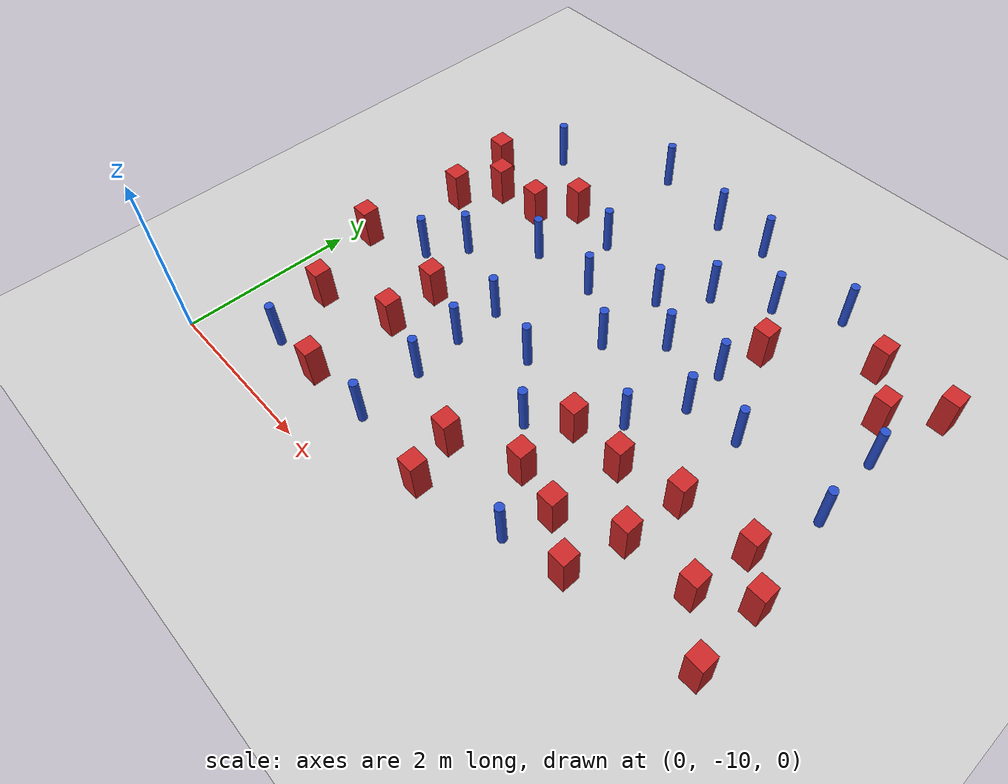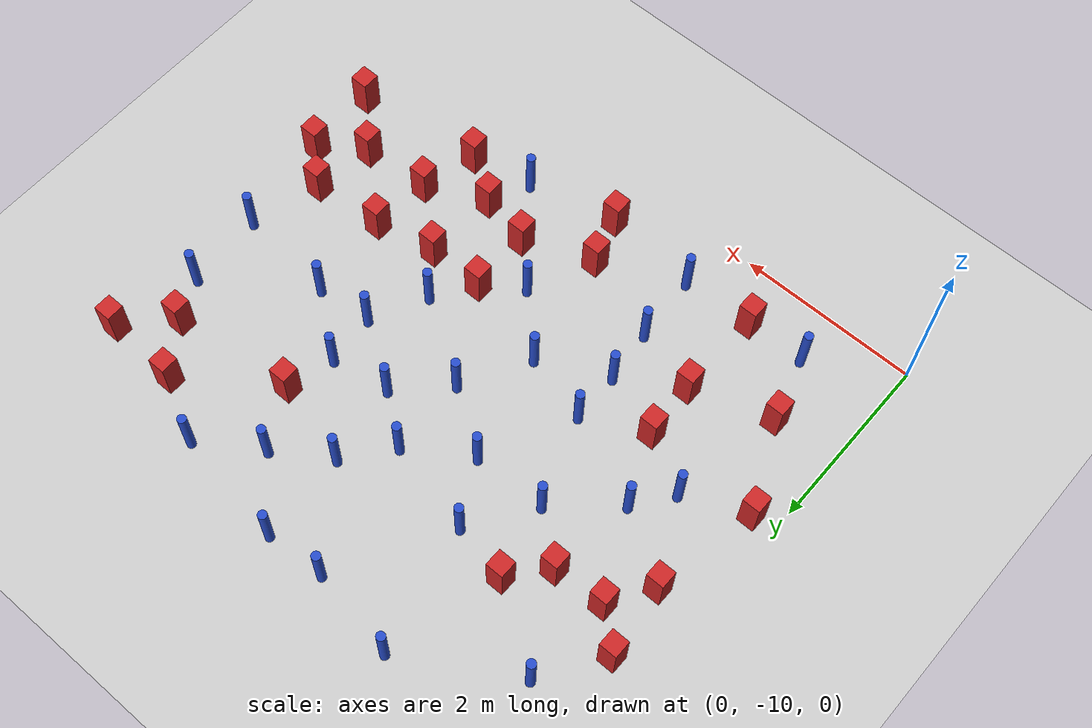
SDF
<sdf version="1.6">
 <world name="default">
  <model name="ground_plane">
   <static>1</static>
   <link name="link">
    <collision name="collision">
     <geometry><plane><normal>0 0 1</normal><size>100 100</size></plane></geometry>
     <surface><friction><ode><mu>100</mu><mu2>50</mu2></ode></friction></surface>
    </collision>
    <visual name="visual">
     <cast_shadows>0</cast_shadows>
     <geometry><plane><normal>0 0 1</normal><size>100 100</size></plane></geometry>
     <material>
      <ambient>1.0 1.0 1.0 1.0</ambient>
      <diffuse>0.8 0.8 0.8 1.0</diffuse>
      <specular>0.01 0.01 0.01 1.000000</specular>
     </material>
    </visual>
   </link>
  </model>
  <model name="pole_obstacle1">
   <static>true</static>
   <pose>3.65739315824 -4.48320199937 2.88873142074e-08 -9.90536689859e-09 4.60219948989e-07 -1.20965994961e-07</pose>
   <link name="link">
    <pose>0 0 0.3 0 -0 0</pose>
    <inertial>
     <mass>1</mass>
     <inertia><ixx>0.145833</ixx><ixy>0</ixy><ixz>0</ixz><iyy>0.145833</iyy><iyz>0</iyz><izz>0.125</izz></inertia>
    </inertial>
    <collision name="collision">
     <geometry><cylinder><radius>0.05</radius><length>.6</length></cylinder></geometry>
    </collision>
    <visual name="visual">
     <geometry><cylinder><radius>0.05</radius><length>.6</length></cylinder></geometry>
     <material>
      <script><name>Gazebo/Blue</name><uri>file://media/materials/scripts/gazebo.material</uri></script>
     </material>
    </visual>
   </link>
  </model>
  <model name="pole_obstacle7">
   <static>true</static>
   <pose>1.22205446212 -6.99600765452 2.88873142074e-08 -9.90536689852e-09 4.60219948989e-07 -1.2096599496e-07</pose>
   <link name="link">
    <pose>0 0 0.3 0 -0 0</pose>
    <inertial>
     <mass>1</mass>
     <inertia><ixx>0.145833</ixx><ixy>0</ixy><ixz>0</ixz><iyy>0.145833</iyy><iyz>0</iyz><izz>0.125</izz></inertia>
    </inertial>
    <collision name="collision">
     <geometry><cylinder><radius>0.05</radius><length>.6</length></cylinder></geometry>
    </collision>
    <visual name="visual">
     <geometry><cylinder><radius>0.05</radius><length>.6</length></cylinder></geometry>
     <material>
      <script><name>Gazebo/Blue</name><uri>file://media/materials/scripts/gazebo.material</uri></script>
     </material>
    </visual>
   </link>
  </model>
  <model name="pole_obstacle18">
   <static>true</static>
   <pose>2.01173463298 -4.35096842097 2.88873142074e-08 -9.90536689932e-09 4.60219948987e-07 -1.20965994962e-07</pose>
   <link name="link">
    <pose>0 0 0.3 0 -0 0</pose>
    <inertial>
     <mass>1</mass>
     <inertia><ixx>0.145833</ixx><ixy>0</ixy><ixz>0</ixz><iyy>0.145833</iyy><iyz>0</iyz><izz>0.125</izz></inertia>
    </inertial>
    <collision name="collision">
     <geometry><cylinder><radius>0.05</radius><length>.6</length></cylinder></geometry>
    </collision>
    <visual name="visual">
     <geometry><cylinder><radius>0.05</radius><length>.6</length></cylinder></geometry>
     <material>
      <script><name>Gazebo/Blue</name><uri>file://media/materials/scripts/gazebo.material</uri></script>
     </material>
    </visual>
   </link>
  </model>
  <model name="square_post_obstacle15">
   <static>true</static>
   <pose>3.21988299101 -8.89908096435 8.22691968438e-08 7.22125133819e-06 -7.54495500217e-07 2.29674213826e-05</pose>
   <link name="link">
    <pose>0 0 0.25 0 -0 0</pose>
    <inertial>
     <mass>100</mass>
     <inertia>
      <ixx>0.166667</ixx>
      <ixy>0</ixy>
      <ixz>0</ixz>
      <iyy>0.166667</iyy>
      <iyz>0</iyz>
      <izz>0.166667</izz>
     </inertia>
    </inertial>
    <collision name="collision"><geometry><box><size>.2 .2 .5</size></box></geometry></collision>
    <visual name="visual">
     <geometry><box><size>.2 .2 .5</size></box></geometry>
     <material>
      <script><name>Gazebo/Red</name><uri>file://media/materials/scripts/gazebo.material</uri></script>
     </material>
    </visual>
   </link>
  </model>
  <model name="square_post_obstacle23">
   <static>true</static>
   <pose>6.04751558992 -7.67596608932 8.22691968438e-08 7.22125133819e-06 -7.54495500217e-07 2.29674213826e-05</pose>
   <link name="link">
    <pose>0 0 0.25 0 -0 0</pose>
    <inertial>
     <mass>100</mass>
     <inertia>
      <ixx>0.166667</ixx>
      <ixy>0</ixy>
      <ixz>0</ixz>
      <iyy>0.166667</iyy>
      <iyz>0</iyz>
      <izz>0.166667</izz>
     </inertia>
    </inertial>
    <collision name="collision"><geometry><box><size>.2 .2 .5</size></box></geometry></collision>
    <visual name="visual">
     <geometry><box><size>.2 .2 .5</size></box></geometry>
     <material>
      <script><name>Gazebo/Red</name><uri>file://media/materials/scripts/gazebo.material</uri></script>
     </material>
    </visual>
   </link>
  </model>
  <model name="square_post_obstacle29">
   <static>true</static>
   <pose>5.25063450716 -7.74062578746 8.22691968438e-08 7.2212513382e-06 -7.54495500217e-07 2.29674213826e-05</pose>
   <link name="link">
    <pose>0 0 0.25 0 -0 0</pose>
    <inertial>
     <mass>100</mass>
     <inertia>
      <ixx>0.166667</ixx>
      <ixy>0</ixy>
      <ixz>0</ixz>
      <iyy>0.166667</iyy>
      <iyz>0</iyz>
      <izz>0.166667</izz>
     </inertia>
    </inertial>
    <collision name="collision"><geometry><box><size>.2 .2 .5</size></box></geometry></collision>
    <visual name="visual">
     <geometry><box><size>.2 .2 .5</size></box></geometry>
     <material>
      <script><name>Gazebo/Red</name><uri>file://media/materials/scripts/gazebo.material</uri></script>
     </material>
    </visual>
   </link>
  </model>
  <model name="pole_obstacle43">
   <static>true</static>
   <pose>4.94702246728 -4.67626609164 2.88873142074e-08 -9.90536690842e-09 4.60219948965e-07 -1.20965994976e-07</pose>
   <link name="link">
    <pose>0 0 0.3 0 -0 0</pose>
    <inertial>
     <mass>1</mass>
     <inertia><ixx>0.145833</ixx><ixy>0</ixy><ixz>0</ixz><iyy>0.145833</iyy><iyz>0</iyz><izz>0.125</izz></inertia>
    </inertial>
    <collision name="collision">
     <geometry><cylinder><radius>0.05</radius><length>.6</length></cylinder></geometry>
    </collision>
    <visual name="visual">
     <geometry><cylinder><radius>0.05</radius><length>.6</length></cylinder></geometry>
     <material>
      <script><name>Gazebo/Blue</name><uri>file://media/materials/scripts/gazebo.material</uri></script>
     </material>
    </visual>
   </link>
  </model>
  <model name="pole_obstacle45">
   <static>true</static>
   <pose>3.35569557505 -6.87437294628 2.88873142074e-08 -9.90536689859e-09 4.60219948989e-07 -1.20965994961e-07</pose>
   <link name="link">
    <pose>0 0 0.3 0 -0 0</pose>
    <inertial>
     <mass>1</mass>
     <inertia><ixx>0.145833</ixx><ixy>0</ixy><ixz>0</ixz><iyy>0.145833</iyy><iyz>0</iyz><izz>0.125</izz></inertia>
    </inertial>
    <collision name="collision">
     <geometry><cylinder><radius>0.05</radius><length>.6</length></cylinder></geometry>
    </collision>
    <visual name="visual">
     <geometry><cylinder><radius>0.05</radius><length>.6</length></cylinder></geometry>
     <material>
      <script><name>Gazebo/Blue</name><uri>file://media/materials/scripts/gazebo.material</uri></script>
     </material>
    </visual>
   </link>
  </model>
  <model name="pole_obstacle55">
   <static>true</static>
   <pose>2.66759036344 -6.4156882368 2.88873142074e-08 -9.90536689859e-09 4.60219948989e-07 -1.20965994961e-07</pose>
   <link name="link">
    <pose>0 0 0.3 0 -0 0</pose>
    <inertial>
     <mass>1</mass>
     <inertia><ixx>0.145833</ixx><ixy>0</ixy><ixz>0</ixz><iyy>0.145833</iyy><iyz>0</iyz><izz>0.125</izz></inertia>
    </inertial>
    <collision name="collision">
     <geometry><cylinder><radius>0.05</radius><length>.6</length></cylinder></geometry>
    </collision>
    <visual name="visual">
     <geometry><cylinder><radius>0.05</radius><length>.6</length></cylinder></geometry>
     <material>
      <script><name>Gazebo/Blue</name><uri>file://media/materials/scripts/gazebo.material</uri></script>
     </material>
    </visual>
   </link>
  </model>
  <model name="square_post_obstacle52">
   <static>true</static>
   <pose>4.62579269263 -5.7338035239 8.22691968438e-08 7.2212513382e-06 -7.54495500217e-07 2.29674213826e-05</pose>
   <link name="link">
    <pose>0 0 0.25 0 -0 0</pose>
    <inertial>
     <mass>100</mass>
     <inertia>
      <ixx>0.166667</ixx>
      <ixy>0</ixy>
      <ixz>0</ixz>
      <iyy>0.166667</iyy>
      <iyz>0</iyz>
      <izz>0.166667</izz>
     </inertia>
    </inertial>
    <collision name="collision"><geometry><box><size>.2 .2 .5</size></box></geometry></collision>
    <visual name="visual">
     <geometry><box><size>.2 .2 .5</size></box></geometry>
     <material>
      <script><name>Gazebo/Red</name><uri>file://media/materials/scripts/gazebo.material</uri></script>
     </material>
    </visual>
   </link>
  </model>
  <model name="square_post_obstacle57">
   <static>true</static>
   <pose>0.698648312188 -8.67454856008 8.22691968438e-08 7.22125133819e-06 -7.54495500217e-07 2.29674213826e-05</pose>
   <link name="link">
    <pose>0 0 0.25 0 -0 0</pose>
    <inertial>
     <mass>100</mass>
     <inertia>
      <ixx>0.166667</ixx>
      <ixy>0</ixy>
      <ixz>0</ixz>
      <iyy>0.166667</iyy>
      <iyz>0</iyz>
      <izz>0.166667</izz>
     </inertia>
    </inertial>
    <collision name="collision"><geometry><box><size>.2 .2 .5</size></box></geometry></collision>
    <visual name="visual">
     <geometry><box><size>.2 .2 .5</size></box></geometry>
     <material>
      <script><name>Gazebo/Red</name><uri>file://media/materials/scripts/gazebo.material</uri></script>
     </material>
    </visual>
   </link>
  </model>
  <model name="pole_obstacle71">
   <static>true</static>
   <pose>2.96030339051 -7.61163965273 2.88873142074e-08 -9.90536689859e-09 4.60219948989e-07 -1.20965994961e-07</pose>
   <link name="link">
    <pose>0 0 0.3 0 -0 0</pose>
    <inertial>
     <mass>1</mass>
     <inertia><ixx>0.145833</ixx><ixy>0</ixy><ixz>0</ixz><iyy>0.145833</iyy><iyz>0</iyz><izz>0.125</izz></inertia>
    </inertial>
    <collision name="collision">
     <geometry><cylinder><radius>0.05</radius><length>.6</length></cylinder></geometry>
    </collision>
    <visual name="visual">
     <geometry><cylinder><radius>0.05</radius><length>.6</length></cylinder></geometry>
     <material>
      <script><name>Gazebo/Blue</name><uri>file://media/materials/scripts/gazebo.material</uri></script>
     </material>
    </visual>
   </link>
  </model>
  <model name="pole_obstacle72">
   <static>true</static>
   <pose>3.71090245789 -5.48729451987 2.88873142074e-08 -9.90536689859e-09 4.60219948989e-07 -1.20965994961e-07</pose>
   <link name="link">
    <pose>0 0 0.3 0 -0 0</pose>
    <inertial>
     <mass>1</mass>
     <inertia><ixx>0.145833</ixx><ixy>0</ixy><ixz>0</ixz><iyy>0.145833</iyy><iyz>0</iyz><izz>0.125</izz></inertia>
    </inertial>
    <collision name="collision">
     <geometry><cylinder><radius>0.05</radius><length>.6</length></cylinder></geometry>
    </collision>
    <visual name="visual">
     <geometry><cylinder><radius>0.05</radius><length>.6</length></cylinder></geometry>
     <material>
      <script><name>Gazebo/Blue</name><uri>file://media/materials/scripts/gazebo.material</uri></script>
     </material>
    </visual>
   </link>
  </model>
  <model name="pole_obstacle73">
   <static>true</static>
   <pose>5.16660916505 -6.77714790191 2.88873142074e-08 -9.90536690842e-09 4.60219948965e-07 -1.20965994976e-07</pose>
   <link name="link">
    <pose>0 0 0.3 0 -0 0</pose>
    <inertial>
     <mass>1</mass>
     <inertia><ixx>0.145833</ixx><ixy>0</ixy><ixz>0</ixz><iyy>0.145833</iyy><iyz>0</iyz><izz>0.125</izz></inertia>
    </inertial>
    <collision name="collision">
     <geometry><cylinder><radius>0.05</radius><length>.6</length></cylinder></geometry>
    </collision>
    <visual name="visual">
     <geometry><cylinder><radius>0.05</radius><length>.6</length></cylinder></geometry>
     <material>
      <script><name>Gazebo/Blue</name><uri>file://media/materials/scripts/gazebo.material</uri></script>
     </material>
    </visual>
   </link>
  </model>
  <model name="pole_obstacle79">
   <static>true</static>
   <pose>2.29023742442 -8.5745845594 2.88873142074e-08 -9.90536692318e-09 4.6021994893e-07 -1.20965994988e-07</pose>
   <link name="link">
    <pose>0 0 0.3 0 -0 0</pose>
    <inertial>
     <mass>1</mass>
     <inertia><ixx>0.145833</ixx><ixy>0</ixy><ixz>0</ixz><iyy>0.145833</iyy><iyz>0</iyz><izz>0.125</izz></inertia>
    </inertial>
    <collision name="collision">
     <geometry><cylinder><radius>0.05</radius><length>.6</length></cylinder></geometry>
    </collision>
    <visual name="visual">
     <geometry><cylinder><radius>0.05</radius><length>.6</length></cylinder></geometry>
     <material>
      <script><name>Gazebo/Blue</name><uri>file://media/materials/scripts/gazebo.material</uri></script>
     </material>
    </visual>
   </link>
  </model>
  <model name="square_post_obstacle71">
   <static>true</static>
   <pose>5.6048974799 -5.02530628249 8.22691968438e-08 7.22125133819e-06 -7.54495500217e-07 2.29674213826e-05</pose>
   <link name="link">
    <pose>0 0 0.25 0 -0 0</pose>
    <inertial>
     <mass>100</mass>
     <inertia>
      <ixx>0.166667</ixx>
      <ixy>0</ixy>
      <ixz>0</ixz>
      <iyy>0.166667</iyy>
      <iyz>0</iyz>
      <izz>0.166667</izz>
     </inertia>
    </inertial>
    <collision name="collision"><geometry><box><size>.2 .2 .5</size></box></geometry></collision>
    <visual name="visual">
     <geometry><box><size>.2 .2 .5</size></box></geometry>
     <material>
      <script><name>Gazebo/Red</name><uri>file://media/materials/scripts/gazebo.material</uri></script>
     </material>
    </visual>
   </link>
  </model>
  <model name="square_post_obstacle72">
   <static>true</static>
   <pose>5.03410437836 -9.03712477254 8.22691968438e-08 7.22125133819e-06 -7.54495500217e-07 2.29674213826e-05</pose>
   <link name="link">
    <pose>0 0 0.25 0 -0 0</pose>
    <inertial>
     <mass>100</mass>
     <inertia>
      <ixx>0.166667</ixx>
      <ixy>0</ixy>
      <ixz>0</ixz>
      <iyy>0.166667</iyy>
      <iyz>0</iyz>
      <izz>0.166667</izz>
     </inertia>
    </inertial>
    <collision name="collision"><geometry><box><size>.2 .2 .5</size></box></geometry></collision>
    <visual name="visual">
     <geometry><box><size>.2 .2 .5</size></box></geometry>
     <material>
      <script><name>Gazebo/Red</name><uri>file://media/materials/scripts/gazebo.material</uri></script>
     </material>
    </visual>
   </link>
  </model>
  <model name="square_post_obstacle78">
   <static>true</static>
   <pose>3.94985074465 -7.87588354614 8.22691968438e-08 7.2212513382e-06 -7.54495500217e-07 2.29674213826e-05</pose>
   <link name="link">
    <pose>0 0 0.25 0 -0 0</pose>
    <inertial>
     <mass>100</mass>
     <inertia>
      <ixx>0.166667</ixx>
      <ixy>0</ixy>
      <ixz>0</ixz>
      <iyy>0.166667</iyy>
      <iyz>0</iyz>
      <izz>0.166667</izz>
     </inertia>
    </inertial>
    <collision name="collision"><geometry><box><size>.2 .2 .5</size></box></geometry></collision>
    <visual name="visual">
     <geometry><box><size>.2 .2 .5</size></box></geometry>
     <material>
      <script><name>Gazebo/Red</name><uri>file://media/materials/scripts/gazebo.material</uri></script>
     </material>
    </visual>
   </link>
  </model>
  <model name="pole_obstacle91">
   <static>true</static>
   <pose>2.22232558398 -7.97722410862 2.88873142074e-08 -9.90536692129e-09 4.60219948935e-07 -1.20965994985e-07</pose>
   <link name="link">
    <pose>0 0 0.3 0 -0 0</pose>
    <inertial>
     <mass>1</mass>
     <inertia><ixx>0.145833</ixx><ixy>0</ixy><ixz>0</ixz><iyy>0.145833</iyy><iyz>0</iyz><izz>0.125</izz></inertia>
    </inertial>
    <collision name="collision">
     <geometry><cylinder><radius>0.05</radius><length>.6</length></cylinder></geometry>
    </collision>
    <visual name="visual">
     <geometry><cylinder><radius>0.05</radius><length>.6</length></cylinder></geometry>
     <material>
      <script><name>Gazebo/Blue</name><uri>file://media/materials/scripts/gazebo.material</uri></script>
     </material>
    </visual>
   </link>
  </model>
  <model name="square_post_obstacle88">
   <static>true</static>
   <pose>6.4522033444 -8.84956385897 8.22691968438e-08 7.2212513382e-06 -7.54495500217e-07 2.29674213826e-05</pose>
   <link name="link">
    <pose>0 0 0.25 0 -0 0</pose>
    <inertial>
     <mass>100</mass>
     <inertia>
      <ixx>0.166667</ixx>
      <ixy>0</ixy>
      <ixz>0</ixz>
      <iyy>0.166667</iyy>
      <iyz>0</iyz>
      <izz>0.166667</izz>
     </inertia>
    </inertial>
    <collision name="collision"><geometry><box><size>.2 .2 .5</size></box></geometry></collision>
    <visual name="visual">
     <geometry><box><size>.2 .2 .5</size></box></geometry>
     <material>
      <script><name>Gazebo/Red</name><uri>file://media/materials/scripts/gazebo.material</uri></script>
     </material>
    </visual>
   </link>
  </model>
  <model name="pole_obstacle96">
   <static>true</static>
   <pose>2.34333774229 -9.33823856717 2.88873142074e-08 -9.90536692318e-09 4.6021994893e-07 -1.20965994988e-07</pose>
   <link name="link">
    <pose>0 0 0.3 0 -0 0</pose>
    <inertial>
     <mass>1</mass>
     <inertia><ixx>0.145833</ixx><ixy>0</ixy><ixz>0</ixz><iyy>0.145833</iyy><iyz>0</iyz><izz>0.125</izz></inertia>
    </inertial>
    <collision name="collision">
     <geometry><cylinder><radius>0.05</radius><length>.6</length></cylinder></geometry>
    </collision>
    <visual name="visual">
     <geometry><cylinder><radius>0.05</radius><length>.6</length></cylinder></geometry>
     <material>
      <script><name>Gazebo/Blue</name><uri>file://media/materials/scripts/gazebo.material</uri></script>
     </material>
    </visual>
   </link>
  </model>
  <model name="square_post_obstacle96">
   <static>true</static>
   <pose>1.55835667237 -9.37310184265 8.22691968438e-08 7.22125133819e-06 -7.54495500217e-07 2.29674213826e-05</pose>
   <link name="link">
    <pose>0 0 0.25 0 -0 0</pose>
    <inertial>
     <mass>100</mass>
     <inertia>
      <ixx>0.166667</ixx>
      <ixy>0</ixy>
      <ixz>0</ixz>
      <iyy>0.166667</iyy>
      <iyz>0</iyz>
      <izz>0.166667</izz>
     </inertia>
    </inertial>
    <collision name="collision"><geometry><box><size>.2 .2 .5</size></box></geometry></collision>
    <visual name="visual">
     <geometry><box><size>.2 .2 .5</size></box></geometry>
     <material>
      <script><name>Gazebo/Red</name><uri>file://media/materials/scripts/gazebo.material</uri></script>
     </material>
    </visual>
   </link>
  </model>
  <model name="square_post_obstacle98">
   <static>true</static>
   <pose>1.67275912267 -5.62196269488 8.22691968438e-08 7.2212513382e-06 -7.54495500217e-07 2.29674213826e-05</pose>
   <link name="link">
    <pose>0 0 0.25 0 -0 0</pose>
    <inertial>
     <mass>100</mass>
     <inertia>
      <ixx>0.166667</ixx>
      <ixy>0</ixy>
      <ixz>0</ixz>
      <iyy>0.166667</iyy>
      <iyz>0</iyz>
      <izz>0.166667</izz>
     </inertia>
    </inertial>
    <collision name="collision"><geometry><box><size>.2 .2 .5</size></box></geometry></collision>
    <visual name="visual">
     <geometry><box><size>.2 .2 .5</size></box></geometry>
     <material>
      <script><name>Gazebo/Red</name><uri>file://media/materials/scripts/gazebo.material</uri></script>
     </material>
    </visual>
   </link>
  </model>
  <model name="pole_obstacle105">
   <static>true</static>
   <pose>1.85806245193 -6.4401720642 2.88873142074e-08 -9.90536689852e-09 4.60219948989e-07 -1.2096599496e-07</pose>
   <link name="link">
    <pose>0 0 0.3 0 -0 0</pose>
    <inertial>
     <mass>1</mass>
     <inertia><ixx>0.145833</ixx><ixy>0</ixy><ixz>0</ixz><iyy>0.145833</iyy><iyz>0</iyz><izz>0.125</izz></inertia>
    </inertial>
    <collision name="collision">
     <geometry><cylinder><radius>0.05</radius><length>.6</length></cylinder></geometry>
    </collision>
    <visual name="visual">
     <geometry><cylinder><radius>0.05</radius><length>.6</length></cylinder></geometry>
     <material>
      <script><name>Gazebo/Blue</name><uri>file://media/materials/scripts/gazebo.material</uri></script>
     </material>
    </visual>
   </link>
  </model>
  <model name="square_post_obstacle105">
   <static>true</static>
   <pose>4.57862427116 -7.87932431411 8.22691968438e-08 7.22125133819e-06 -7.54495500217e-07 2.29674213826e-05</pose>
   <link name="link">
    <pose>0 0 0.25 0 -0 0</pose>
    <inertial>
     <mass>100</mass>
     <inertia>
      <ixx>0.166667</ixx>
      <ixy>0</ixy>
      <ixz>0</ixz>
      <iyy>0.166667</iyy>
      <iyz>0</iyz>
      <izz>0.166667</izz>
     </inertia>
    </inertial>
    <collision name="collision"><geometry><box><size>.2 .2 .5</size></box></geometry></collision>
    <visual name="visual">
     <geometry><box><size>.2 .2 .5</size></box></geometry>
     <material>
      <script><name>Gazebo/Red</name><uri>file://media/materials/scripts/gazebo.material</uri></script>
     </material>
    </visual>
   </link>
  </model>
  <model name="square_post_obstacle107">
   <static>true</static>
   <pose>0.478189539805 -6.52604958438 8.22691968438e-08 7.2212513382e-06 -7.54495500217e-07 2.29674213826e-05</pose>
   <link name="link">
    <pose>0 0 0.25 0 -0 0</pose>
    <inertial>
     <mass>100</mass>
     <inertia>
      <ixx>0.166667</ixx>
      <ixy>0</ixy>
      <ixz>0</ixz>
      <iyy>0.166667</iyy>
      <iyz>0</iyz>
      <izz>0.166667</izz>
     </inertia>
    </inertial>
    <collision name="collision"><geometry><box><size>.2 .2 .5</size></box></geometry></collision>
    <visual name="visual">
     <geometry><box><size>.2 .2 .5</size></box></geometry>
     <material>
      <script><name>Gazebo/Red</name><uri>file://media/materials/scripts/gazebo.material</uri></script>
     </material>
    </visual>
   </link>
  </model>
  <model name="pole_obstacle114">
   <static>true</static>
   <pose>2.99220562541 -4.51915075554 2.88873142074e-08 -9.90536689859e-09 4.60219948989e-07 -1.20965994961e-07</pose>
   <link name="link">
    <pose>0 0 0.3 0 -0 0</pose>
    <inertial>
     <mass>1</mass>
     <inertia><ixx>0.145833</ixx><ixy>0</ixy><ixz>0</ixz><iyy>0.145833</iyy><iyz>0</iyz><izz>0.125</izz></inertia>
    </inertial>
    <collision name="collision">
     <geometry><cylinder><radius>0.05</radius><length>.6</length></cylinder></geometry>
    </collision>
    <visual name="visual">
     <geometry><cylinder><radius>0.05</radius><length>.6</length></cylinder></geometry>
     <material>
      <script><name>Gazebo/Blue</name><uri>file://media/materials/scripts/gazebo.material</uri></script>
     </material>
    </visual>
   </link>
  </model>
  <model name="pole_obstacle115">
   <static>true</static>
   <pose>0.811722050141 -5.05490556978 2.88873142074e-08 -9.90536689661e-09 4.60219948993e-07 -1.20965994957e-07</pose>
   <link name="link">
    <pose>0 0 0.3 0 -0 0</pose>
    <inertial>
     <mass>1</mass>
     <inertia><ixx>0.145833</ixx><ixy>0</ixy><ixz>0</ixz><iyy>0.145833</iyy><iyz>0</iyz><izz>0.125</izz></inertia>
    </inertial>
    <collision name="collision">
     <geometry><cylinder><radius>0.05</radius><length>.6</length></cylinder></geometry>
    </collision>
    <visual name="visual">
     <geometry><cylinder><radius>0.05</radius><length>.6</length></cylinder></geometry>
     <material>
      <script><name>Gazebo/Blue</name><uri>file://media/materials/scripts/gazebo.material</uri></script>
     </material>
    </visual>
   </link>
  </model>
  <model name="pole_obstacle119">
   <static>true</static>
   <pose>2.30880766306 -5.74942018082 2.88873142074e-08 -9.90536689859e-09 4.60219948989e-07 -1.20965994961e-07</pose>
   <link name="link">
    <pose>0 0 0.3 0 -0 0</pose>
    <inertial>
     <mass>1</mass>
     <inertia><ixx>0.145833</ixx><ixy>0</ixy><ixz>0</ixz><iyy>0.145833</iyy><iyz>0</iyz><izz>0.125</izz></inertia>
    </inertial>
    <collision name="collision">
     <geometry><cylinder><radius>0.05</radius><length>.6</length></cylinder></geometry>
    </collision>
    <visual name="visual">
     <geometry><cylinder><radius>0.05</radius><length>.6</length></cylinder></geometry>
     <material>
      <script><name>Gazebo/Blue</name><uri>file://media/materials/scripts/gazebo.material</uri></script>
     </material>
    </visual>
   </link>
  </model>
  <model name="pole_obstacle124">
   <static>true</static>
   <pose>4.49861119113 -6.26717394891 2.88873142074e-08 -9.90536690842e-09 4.60219948965e-07 -1.20965994976e-07</pose>
   <link name="link">
    <pose>0 0 0.3 0 -0 0</pose>
    <inertial>
     <mass>1</mass>
     <inertia><ixx>0.145833</ixx><ixy>0</ixy><ixz>0</ixz><iyy>0.145833</iyy><iyz>0</iyz><izz>0.125</izz></inertia>
    </inertial>
    <collision name="collision">
     <geometry><cylinder><radius>0.05</radius><length>.6</length></cylinder></geometry>
    </collision>
    <visual name="visual">
     <geometry><cylinder><radius>0.05</radius><length>.6</length></cylinder></geometry>
     <material>
      <script><name>Gazebo/Blue</name><uri>file://media/materials/scripts/gazebo.material</uri></script>
     </material>
    </visual>
   </link>
  </model>
  <model name="square_post_obstacle122">
   <static>true</static>
   <pose>5.1878017933 -8.40824305975 8.22691968438e-08 7.2212513382e-06 -7.54495500217e-07 2.29674213826e-05</pose>
   <link name="link">
    <pose>0 0 0.25 0 -0 0</pose>
    <inertial>
     <mass>100</mass>
     <inertia>
      <ixx>0.166667</ixx>
      <ixy>0</ixy>
      <ixz>0</ixz>
      <iyy>0.166667</iyy>
      <iyz>0</iyz>
      <izz>0.166667</izz>
     </inertia>
    </inertial>
    <collision name="collision"><geometry><box><size>.2 .2 .5</size></box></geometry></collision>
    <visual name="visual">
     <geometry><box><size>.2 .2 .5</size></box></geometry>
     <material>
      <script><name>Gazebo/Red</name><uri>file://media/materials/scripts/gazebo.material</uri></script>
     </material>
    </visual>
   </link>
  </model>
  <model name="pole_obstacle128">
   <static>true</static>
   <pose>4.36153956619 -9.18904836948 2.88873142074e-08 -9.9053668967e-09 4.60219948993e-07 -1.20965994957e-07</pose>
   <link name="link">
    <pose>0 0 0.3 0 -0 0</pose>
    <inertial>
     <mass>1</mass>
     <inertia><ixx>0.145833</ixx><ixy>0</ixy><ixz>0</ixz><iyy>0.145833</iyy><iyz>0</iyz><izz>0.125</izz></inertia>
    </inertial>
    <collision name="collision">
     <geometry><cylinder><radius>0.05</radius><length>.6</length></cylinder></geometry>
    </collision>
    <visual name="visual">
     <geometry><cylinder><radius>0.05</radius><length>.6</length></cylinder></geometry>
     <material>
      <script><name>Gazebo/Blue</name><uri>file://media/materials/scripts/gazebo.material</uri></script>
     </material>
    </visual>
   </link>
  </model>
  <model name="square_post_obstacle125">
   <static>true</static>
   <pose>5.99073592019 -5.56121431936 8.22691968438e-08 7.2212513382e-06 -7.54495500217e-07 2.29674213826e-05</pose>
   <link name="link">
    <pose>0 0 0.25 0 -0 0</pose>
    <inertial>
     <mass>100</mass>
     <inertia>
      <ixx>0.166667</ixx>
      <ixy>0</ixy>
      <ixz>0</ixz>
      <iyy>0.166667</iyy>
      <iyz>0</iyz>
      <izz>0.166667</izz>
     </inertia>
    </inertial>
    <collision name="collision"><geometry><box><size>.2 .2 .5</size></box></geometry></collision>
    <visual name="visual">
     <geometry><box><size>.2 .2 .5</size></box></geometry>
     <material>
      <script><name>Gazebo/Red</name><uri>file://media/materials/scripts/gazebo.material</uri></script>
     </material>
    </visual>
   </link>
  </model>
  <model name="pole_obstacle130">
   <static>true</static>
   <pose>2.20804863374 -7.41557176191 2.88873142074e-08 -9.90536689859e-09 4.60219948989e-07 -1.20965994961e-07</pose>
   <link name="link">
    <pose>0 0 0.3 0 -0 0</pose>
    <inertial>
     <mass>1</mass>
     <inertia><ixx>0.145833</ixx><ixy>0</ixy><ixz>0</ixz><iyy>0.145833</iyy><iyz>0</iyz><izz>0.125</izz></inertia>
    </inertial>
    <collision name="collision">
     <geometry><cylinder><radius>0.05</radius><length>.6</length></cylinder></geometry>
    </collision>
    <visual name="visual">
     <geometry><cylinder><radius>0.05</radius><length>.6</length></cylinder></geometry>
     <material>
      <script><name>Gazebo/Blue</name><uri>file://media/materials/scripts/gazebo.material</uri></script>
     </material>
    </visual>
   </link>
  </model>
  <model name="square_post_obstacle132">
   <static>true</static>
   <pose>1.53577865869 -7.74850424013 8.22691968438e-08 7.2212513382e-06 -7.54495500217e-07 2.29674213826e-05</pose>
   <link name="link">
    <pose>0 0 0.25 0 -0 0</pose>
    <inertial>
     <mass>100</mass>
     <inertia>
      <ixx>0.166667</ixx>
      <ixy>0</ixy>
      <ixz>0</ixz>
      <iyy>0.166667</iyy>
      <iyz>0</iyz>
      <izz>0.166667</izz>
     </inertia>
    </inertial>
    <collision name="collision"><geometry><box><size>.2 .2 .5</size></box></geometry></collision>
    <visual name="visual">
     <geometry><box><size>.2 .2 .5</size></box></geometry>
     <material>
      <script><name>Gazebo/Red</name><uri>file://media/materials/scripts/gazebo.material</uri></script>
     </material>
    </visual>
   </link>
  </model>
  <model name="pole_obstacle151">
   <static>true</static>
   <pose>3.85108368015 -6.37427262864 2.88873142074e-08 -9.90536689859e-09 4.60219948989e-07 -1.20965994961e-07</pose>
   <link name="link">
    <pose>0 0 0.3 0 -0 0</pose>
    <inertial>
     <mass>1</mass>
     <inertia><ixx>0.145833</ixx><ixy>0</ixy><ixz>0</ixz><iyy>0.145833</iyy><iyz>0</iyz><izz>0.125</izz></inertia>
    </inertial>
    <collision name="collision">
     <geometry><cylinder><radius>0.05</radius><length>.6</length></cylinder></geometry>
    </collision>
    <visual name="visual">
     <geometry><cylinder><radius>0.05</radius><length>.6</length></cylinder></geometry>
     <material>
      <script><name>Gazebo/Blue</name><uri>file://media/materials/scripts/gazebo.material</uri></script>
     </material>
    </visual>
   </link>
  </model>
  <model name="pole_obstacle152">
   <static>true</static>
   <pose>4.29188586102 -5.10471423867 2.88873142074e-08 -9.90536690842e-09 4.60219948965e-07 -1.20965994976e-07</pose>
   <link name="link">
    <pose>0 0 0.3 0 -0 0</pose>
    <inertial>
     <mass>1</mass>
     <inertia><ixx>0.145833</ixx><ixy>0</ixy><ixz>0</ixz><iyy>0.145833</iyy><iyz>0</iyz><izz>0.125</izz></inertia>
    </inertial>
    <collision name="collision">
     <geometry><cylinder><radius>0.05</radius><length>.6</length></cylinder></geometry>
    </collision>
    <visual name="visual">
     <geometry><cylinder><radius>0.05</radius><length>.6</length></cylinder></geometry>
     <material>
      <script><name>Gazebo/Blue</name><uri>file://media/materials/scripts/gazebo.material</uri></script>
     </material>
    </visual>
   </link>
  </model>
  <model name="square_post_obstacle156">
   <static>true</static>
   <pose>0.256281540472 -7.7123943354 8.22691968438e-08 7.2212513382e-06 -7.54495500217e-07 2.29674213826e-05</pose>
   <link name="link">
    <pose>0 0 0.25 0 -0 0</pose>
    <inertial>
     <mass>100</mass>
     <inertia>
      <ixx>0.166667</ixx>
      <ixy>0</ixy>
      <ixz>0</ixz>
      <iyy>0.166667</iyy>
      <iyz>0</iyz>
      <izz>0.166667</izz>
     </inertia>
    </inertial>
    <collision name="collision"><geometry><box><size>.2 .2 .5</size></box></geometry></collision>
    <visual name="visual">
     <geometry><box><size>.2 .2 .5</size></box></geometry>
     <material>
      <script><name>Gazebo/Red</name><uri>file://media/materials/scripts/gazebo.material</uri></script>
     </material>
    </visual>
   </link>
  </model>
  <model name="pole_obstacle175">
   <static>true</static>
   <pose>6.27930871416 -6.89168919093 2.88873142074e-08 -9.90536690842e-09 4.60219948965e-07 -1.20965994976e-07</pose>
   <link name="link">
    <pose>0 0 0.3 0 -0 0</pose>
    <inertial>
     <mass>1</mass>
     <inertia><ixx>0.145833</ixx><ixy>0</ixy><ixz>0</ixz><iyy>0.145833</iyy><iyz>0</iyz><izz>0.125</izz></inertia>
    </inertial>
    <collision name="collision">
     <geometry><cylinder><radius>0.05</radius><length>.6</length></cylinder></geometry>
    </collision>
    <visual name="visual">
     <geometry><cylinder><radius>0.05</radius><length>.6</length></cylinder></geometry>
     <material>
      <script><name>Gazebo/Blue</name><uri>file://media/materials/scripts/gazebo.material</uri></script>
     </material>
    </visual>
   </link>
  </model>
  <model name="square_post_obstacle177">
   <static>true</static>
   <pose>0.384573911324 -5.72338788444 8.22691968438e-08 7.22125133819e-06 -7.54495500217e-07 2.29674213826e-05</pose>
   <link name="link">
    <pose>0 0 0.25 0 -0 0</pose>
    <inertial>
     <mass>100</mass>
     <inertia>
      <ixx>0.166667</ixx>
      <ixy>0</ixy>
      <ixz>0</ixz>
      <iyy>0.166667</iyy>
      <iyz>0</iyz>
      <izz>0.166667</izz>
     </inertia>
    </inertial>
    <collision name="collision"><geometry><box><size>.2 .2 .5</size></box></geometry></collision>
    <visual name="visual">
     <geometry><box><size>.2 .2 .5</size></box></geometry>
     <material>
      <script><name>Gazebo/Red</name><uri>file://media/materials/scripts/gazebo.material</uri></script>
     </material>
    </visual>
   </link>
  </model>
  <model name="pole_obstacle185">
   <static>true</static>
   <pose>3.54777571527 -8.18921066967 2.88873142074e-08 -9.90536692318e-09 4.6021994893e-07 -1.20965994988e-07</pose>
   <link name="link">
    <pose>0 0 0.3 0 -0 0</pose>
    <inertial>
     <mass>1</mass>
     <inertia><ixx>0.145833</ixx><ixy>0</ixy><ixz>0</ixz><iyy>0.145833</iyy><iyz>0</iyz><izz>0.125</izz></inertia>
    </inertial>
    <collision name="collision">
     <geometry><cylinder><radius>0.05</radius><length>.6</length></cylinder></geometry>
    </collision>
    <visual name="visual">
     <geometry><cylinder><radius>0.05</radius><length>.6</length></cylinder></geometry>
     <material>
      <script><name>Gazebo/Blue</name><uri>file://media/materials/scripts/gazebo.material</uri></script>
     </material>
    </visual>
   </link>
  </model>
  <model name="square_post_obstacle184">
   <static>true</static>
   <pose>1.57367269202 -8.3723130609 8.22691968438e-08 7.22125133819e-06 -7.54495500217e-07 2.29674213826e-05</pose>
   <link name="link">
    <pose>0 0 0.25 0 -0 0</pose>
    <inertial>
     <mass>100</mass>
     <inertia>
      <ixx>0.166667</ixx>
      <ixy>0</ixy>
      <ixz>0</ixz>
      <iyy>0.166667</iyy>
      <iyz>0</iyz>
      <izz>0.166667</izz>
     </inertia>
    </inertial>
    <collision name="collision"><geometry><box><size>.2 .2 .5</size></box></geometry></collision>
    <visual name="visual">
     <geometry><box><size>.2 .2 .5</size></box></geometry>
     <material>
      <script><name>Gazebo/Red</name><uri>file://media/materials/scripts/gazebo.material</uri></script>
     </material>
    </visual>
   </link>
  </model>
  <model name="square_post_obstacle186">
   <static>true</static>
   <pose>3.96957215414 -8.58559672385 8.22691968438e-08 7.22125133819e-06 -7.54495500217e-07 2.29674213826e-05</pose>
   <link name="link">
    <pose>0 0 0.25 0 -0 0</pose>
    <inertial>
     <mass>100</mass>
     <inertia>
      <ixx>0.166667</ixx>
      <ixy>0</ixy>
      <ixz>0</ixz>
      <iyy>0.166667</iyy>
      <iyz>0</iyz>
      <izz>0.166667</izz>
     </inertia>
    </inertial>
    <collision name="collision"><geometry><box><size>.2 .2 .5</size></box></geometry></collision>
    <visual name="visual">
     <geometry><box><size>.2 .2 .5</size></box></geometry>
     <material>
      <script><name>Gazebo/Red</name><uri>file://media/materials/scripts/gazebo.material</uri></script>
     </material>
    </visual>
   </link>
  </model>
  <model name="square_post_obstacle192">
   <static>true</static>
   <pose>1.3411421224 -6.02084559331 8.22691968438e-08 7.2212513382e-06 -7.54495500217e-07 2.29674213826e-05</pose>
   <link name="link">
    <pose>0 0 0.25 0 -0 0</pose>
    <inertial>
     <mass>100</mass>
     <inertia>
      <ixx>0.166667</ixx>
      <ixy>0</ixy>
      <ixz>0</ixz>
      <iyy>0.166667</iyy>
      <iyz>0</iyz>
      <izz>0.166667</izz>
     </inertia>
    </inertial>
    <collision name="collision"><geometry><box><size>.2 .2 .5</size></box></geometry></collision>
    <visual name="visual">
     <geometry><box><size>.2 .2 .5</size></box></geometry>
     <material>
      <script><name>Gazebo/Red</name><uri>file://media/materials/scripts/gazebo.material</uri></script>
     </material>
    </visual>
   </link>
  </model>
  <model name="pole_obstacle187">
   <static>true</static>
   <pose>4.55393835963 -6.83632183088 2.88873142074e-08 -9.90536690842e-09 4.60219948965e-07 -1.20965994976e-07</pose>
   <link name="link">
    <pose>0 0 0.3 0 -0 0</pose>
    <inertial>
     <mass>1</mass>
     <inertia><ixx>0.145833</ixx><ixy>0</ixy><ixz>0</ixz><iyy>0.145833</iyy><iyz>0</iyz><izz>0.125</izz></inertia>
    </inertial>
    <collision name="collision">
     <geometry><cylinder><radius>0.05</radius><length>.6</length></cylinder></geometry>
    </collision>
    <visual name="visual">
     <geometry><cylinder><radius>0.05</radius><length>.6</length></cylinder></geometry>
     <material>
      <script><name>Gazebo/Blue</name><uri>file://media/materials/scripts/gazebo.material</uri></script>
     </material>
    </visual>
   </link>
  </model>
  <model name="pole_obstacle188">
   <static>true</static>
   <pose>6.2311920516 -6.01534200904 2.88873142074e-08 -9.90536690842e-09 4.60219948965e-07 -1.20965994976e-07</pose>
   <link name="link">
    <pose>0 0 0.3 0 -0 0</pose>
    <inertial>
     <mass>1</mass>
     <inertia><ixx>0.145833</ixx><ixy>0</ixy><ixz>0</ixz><iyy>0.145833</iyy><iyz>0</iyz><izz>0.125</izz></inertia>
    </inertial>
    <collision name="collision">
     <geometry><cylinder><radius>0.05</radius><length>.6</length></cylinder></geometry>
    </collision>
    <visual name="visual">
     <geometry><cylinder><radius>0.05</radius><length>.6</length></cylinder></geometry>
     <material>
      <script><name>Gazebo/Blue</name><uri>file://media/materials/scripts/gazebo.material</uri></script>
     </material>
    </visual>
   </link>
  </model>
  <model name="pole_obstacle189">
   <static>true</static>
   <pose>0.928570870608 -7.4092854746 2.88873142074e-08 -9.90536689661e-09 4.60219948993e-07 -1.20965994957e-07</pose>
   <link name="link">
    <pose>0 0 0.3 0 -0 0</pose>
    <inertial>
     <mass>1</mass>
     <inertia><ixx>0.145833</ixx><ixy>0</ixy><ixz>0</ixz><iyy>0.145833</iyy><iyz>0</iyz><izz>0.125</izz></inertia>
    </inertial>
    <collision name="collision">
     <geometry><cylinder><radius>0.05</radius><length>.6</length></cylinder></geometry>
    </collision>
    <visual name="visual">
     <geometry><cylinder><radius>0.05</radius><length>.6</length></cylinder></geometry>
     <material>
      <script><name>Gazebo/Blue</name><uri>file://media/materials/scripts/gazebo.material</uri></script>
     </material>
    </visual>
   </link>
  </model>
  <model name="square_post_obstacle203">
   <static>true</static>
   <pose>0.769531345545 -6.05583098866 8.22691968438e-08 7.2212513382e-06 -7.54495500217e-07 2.29674213826e-05</pose>
   <link name="link">
    <pose>0 0 0.25 0 -0 0</pose>
    <inertial>
     <mass>100</mass>
     <inertia>
      <ixx>0.166667</ixx>
      <ixy>0</ixy>
      <ixz>0</ixz>
      <iyy>0.166667</iyy>
      <iyz>0</iyz>
      <izz>0.166667</izz>
     </inertia>
    </inertial>
    <collision name="collision"><geometry><box><size>.2 .2 .5</size></box></geometry></collision>
    <visual name="visual">
     <geometry><box><size>.2 .2 .5</size></box></geometry>
     <material>
      <script><name>Gazebo/Red</name><uri>file://media/materials/scripts/gazebo.material</uri></script>
     </material>
    </visual>
   </link>
  </model>
  <model name="square_post_obstacle205">
   <static>true</static>
   <pose>6.42002176099 -8.02751706871 8.22691968438e-08 7.2212513382e-06 -7.54495500217e-07 2.29674213826e-05</pose>
   <link name="link">
    <pose>0 0 0.25 0 -0 0</pose>
    <inertial>
     <mass>100</mass>
     <inertia>
      <ixx>0.166667</ixx>
      <ixy>0</ixy>
      <ixz>0</ixz>
      <iyy>0.166667</iyy>
      <iyz>0</iyz>
      <izz>0.166667</izz>
     </inertia>
    </inertial>
    <collision name="collision"><geometry><box><size>.2 .2 .5</size></box></geometry></collision>
    <visual name="visual">
     <geometry><box><size>.2 .2 .5</size></box></geometry>
     <material>
      <script><name>Gazebo/Red</name><uri>file://media/materials/scripts/gazebo.material</uri></script>
     </material>
    </visual>
   </link>
  </model>
  <model name="square_post_obstacle211">
   <static>true</static>
   <pose>3.37745776898 -9.41994934126 8.22691968438e-08 7.22125133819e-06 -7.54495500217e-07 2.29674213826e-05</pose>
   <link name="link">
    <pose>0 0 0.25 0 -0 0</pose>
    <inertial>
     <mass>100</mass>
     <inertia>
      <ixx>0.166667</ixx>
      <ixy>0</ixy>
      <ixz>0</ixz>
      <iyy>0.166667</iyy>
      <iyz>0</iyz>
      <izz>0.166667</izz>
     </inertia>
    </inertial>
    <collision name="collision"><geometry><box><size>.2 .2 .5</size></box></geometry></collision>
    <visual name="visual">
     <geometry><box><size>.2 .2 .5</size></box></geometry>
     <material>
      <script><name>Gazebo/Red</name><uri>file://media/materials/scripts/gazebo.material</uri></script>
     </material>
    </visual>
   </link>
  </model>
  <model name="pole_obstacle197">
   <static>true</static>
   <pose>3.3262765172 -5.98579009084 2.88873142074e-08 -9.90536689859e-09 4.60219948989e-07 -1.20965994961e-07</pose>
   <link name="link">
    <pose>0 0 0.3 0 -0 0</pose>
    <inertial>
     <mass>1</mass>
     <inertia><ixx>0.145833</ixx><ixy>0</ixy><ixz>0</ixz><iyy>0.145833</iyy><iyz>0</iyz><izz>0.125</izz></inertia>
    </inertial>
    <collision name="collision">
     <geometry><cylinder><radius>0.05</radius><length>.6</length></cylinder></geometry>
    </collision>
    <visual name="visual">
     <geometry><cylinder><radius>0.05</radius><length>.6</length></cylinder></geometry>
     <material>
      <script><name>Gazebo/Blue</name><uri>file://media/materials/scripts/gazebo.material</uri></script>
     </material>
    </visual>
   </link>
  </model>
  <model name="pole_obstacle202">
   <static>true</static>
   <pose>0.906824055465 -9.39751821365 2.88873142074e-08 -9.90536690779e-09 4.60219948967e-07 -1.20965994975e-07</pose>
   <link name="link">
    <pose>0 0 0.3 0 -0 0</pose>
    <inertial>
     <mass>1</mass>
     <inertia><ixx>0.145833</ixx><ixy>0</ixy><ixz>0</ixz><iyy>0.145833</iyy><iyz>0</iyz><izz>0.125</izz></inertia>
    </inertial>
    <collision name="collision">
     <geometry><cylinder><radius>0.05</radius><length>.6</length></cylinder></geometry>
    </collision>
    <visual name="visual">
     <geometry><cylinder><radius>0.05</radius><length>.6</length></cylinder></geometry>
     <material>
      <script><name>Gazebo/Blue</name><uri>file://media/materials/scripts/gazebo.material</uri></script>
     </material>
    </visual>
   </link>
  </model>
  <model name="pole_obstacle205">
   <static>true</static>
   <pose>4.25397044588 -7.45017193794 2.88873142074e-08 -9.90536690842e-09 4.60219948965e-07 -1.20965994976e-07</pose>
   <link name="link">
    <pose>0 0 0.3 0 -0 0</pose>
    <inertial>
     <mass>1</mass>
     <inertia><ixx>0.145833</ixx><ixy>0</ixy><ixz>0</ixz><iyy>0.145833</iyy><iyz>0</iyz><izz>0.125</izz></inertia>
    </inertial>
    <collision name="collision">
     <geometry><cylinder><radius>0.05</radius><length>.6</length></cylinder></geometry>
    </collision>
    <visual name="visual">
     <geometry><cylinder><radius>0.05</radius><length>.6</length></cylinder></geometry>
     <material>
      <script><name>Gazebo/Blue</name><uri>file://media/materials/scripts/gazebo.material</uri></script>
     </material>
    </visual>
   </link>
  </model>
  <model name="square_post_obstacle218">
   <static>true</static>
   <pose>6.44558003262 -5.07742003534 8.22691968438e-08 7.2212513382e-06 -7.54495500217e-07 2.29674213826e-05</pose>
   <link name="link">
    <pose>0 0 0.25 0 -0 0</pose>
    <inertial>
     <mass>100</mass>
     <inertia>
      <ixx>0.166667</ixx>
      <ixy>0</ixy>
      <ixz>0</ixz>
      <iyy>0.166667</iyy>
      <iyz>0</iyz>
      <izz>0.166667</izz>
     </inertia>
    </inertial>
    <collision name="collision"><geometry><box><size>.2 .2 .5</size></box></geometry></collision>
    <visual name="visual">
     <geometry><box><size>.2 .2 .5</size></box></geometry>
     <material>
      <script><name>Gazebo/Red</name><uri>file://media/materials/scripts/gazebo.material</uri></script>
     </material>
    </visual>
   </link>
  </model>
  <model name="square_post_obstacle219">
   <static>true</static>
   <pose>4.53993003262 -8.71299003534 8.22691968438e-08 7.2212513382e-06 -7.54495500217e-07 2.29674213826e-05</pose>
   <link name="link">
    <pose>0 0 0.25 0 -0 0</pose>
    <inertial>
     <mass>100</mass>
     <inertia>
      <ixx>0.166667</ixx>
      <ixy>0</ixy>
      <ixz>0</ixz>
      <iyy>0.166667</iyy>
      <iyz>0</iyz>
      <izz>0.166667</izz>
     </inertia>
    </inertial>
    <collision name="collision"><geometry><box><size>.2 .2 .5</size></box></geometry></collision>
    <visual name="visual">
     <geometry><box><size>.2 .2 .5</size></box></geometry>
     <material>
      <script><name>Gazebo/Red</name><uri>file://media/materials/scripts/gazebo.material</uri></script>
     </material>
    </visual>
   </link>
  </model>
  <model name="square_post_obstacle235">
   <static>true</static>
   <pose>5.94515003262 -8.35058003534 8.22691968438e-08 7.22125133819e-06 -7.54495500217e-07 2.29674213826e-05</pose>
   <link name="link">
    <pose>0 0 0.25 0 -0 0</pose>
    <inertial>
     <mass>100</mass>
     <inertia>
      <ixx>0.166667</ixx>
      <ixy>0</ixy>
      <ixz>0</ixz>
      <iyy>0.166667</iyy>
      <iyz>0</iyz>
      <izz>0.166667</izz>
     </inertia>
    </inertial>
    <collision name="collision"><geometry><box><size>.2 .2 .5</size></box></geometry></collision>
    <visual name="visual">
     <geometry><box><size>.2 .2 .5</size></box></geometry>
     <material>
      <script><name>Gazebo/Red</name><uri>file://media/materials/scripts/gazebo.material</uri></script>
     </material>
    </visual>
   </link>
  </model>
 </world>
</sdf>
